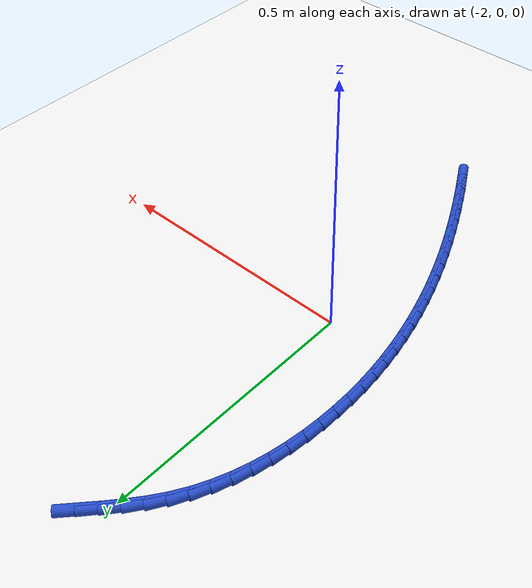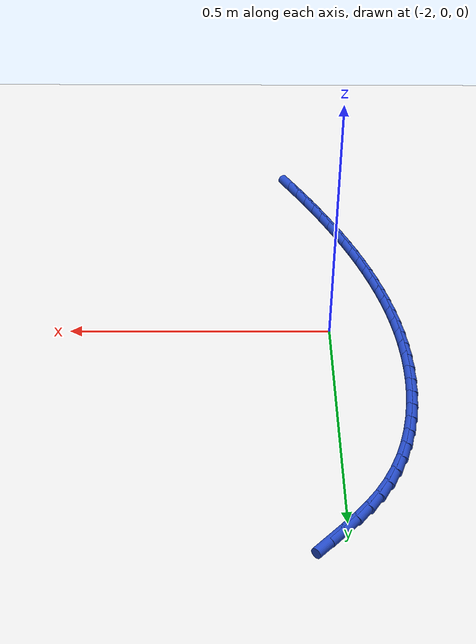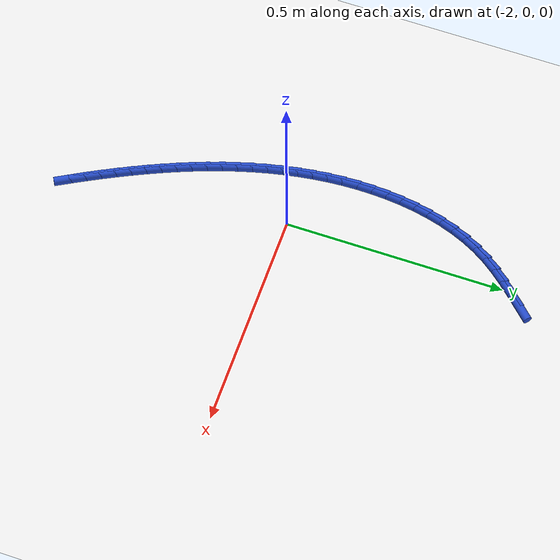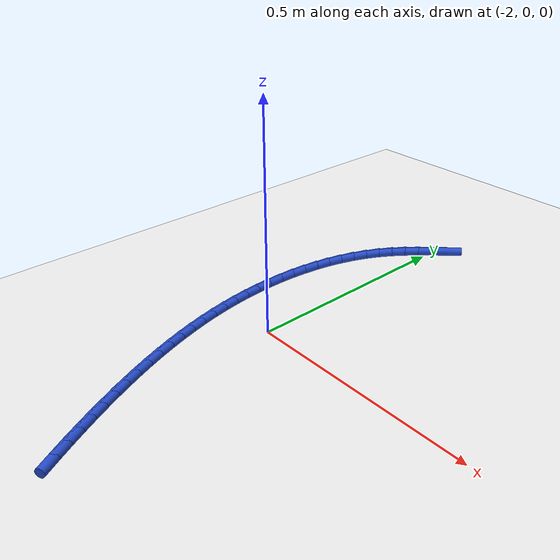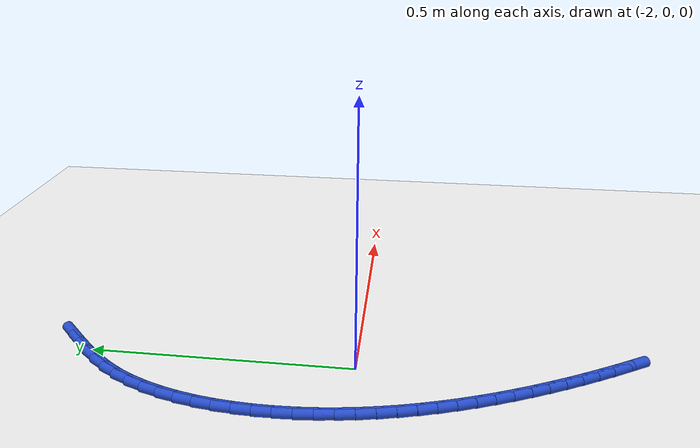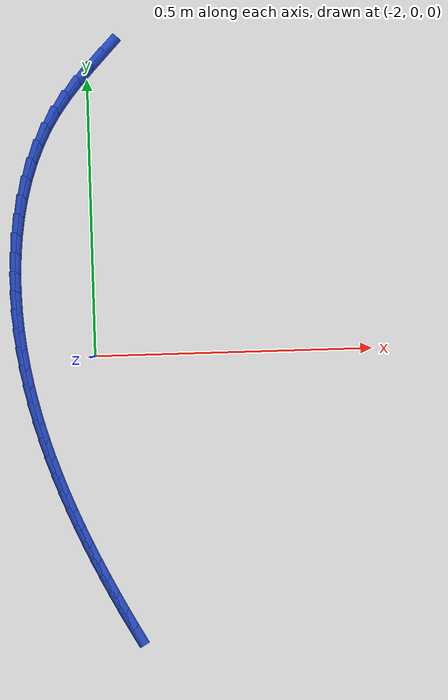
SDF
<sdf version="1.6">
 <world name="default">
  <model name="ground_plane">
   <static>1</static>
   <link name="link">
    <collision name="collision">
     <geometry><plane><normal>0 0 1</normal><size>100 100</size></plane></geometry>
     <surface><friction><ode><mu>100</mu><mu2>50</mu2></ode></friction></surface>
    </collision>
    <visual name="visual">
     <cast_shadows>0</cast_shadows>
     <geometry><plane><normal>0 0 1</normal><size>100 100</size></plane></geometry>
     <material>
      <script><uri>file://media/materials/scripts/gazebo.material</uri><name>Gazebo/WhiteGlow</name></script>
     </material>
    </visual>
   </link>
  </model>
  <model name="line">
   <link name="link_83">
    <pose>-1.9707560407560392 0.5460549394576615 0.01 0 1.57 0.816110648696272</pose>
    <collision name="collision">
     <geometry><cylinder><radius>0.01</radius><length>0.08</length></cylinder></geometry>
    </collision>
    <visual name="visual">
     <material>
      <script><name>Gazebo/Blue</name><uri>file://media/materials/scripts/gazebo.material</uri></script>
     </material>
     <geometry><cylinder><radius>0.01</radius><length>0.08</length></cylinder></geometry>
    </visual>
   </link>
   <link name="link_84">
    <pose>-1.993944335859988 0.5213966960339564 0.01 0 1.57 0.8399314860507694</pose>
    <collision name="collision">
     <geometry><cylinder><radius>0.01</radius><length>0.08</length></cylinder></geometry>
    </collision>
    <visual name="visual">
     <material>
      <script><name>Gazebo/Blue</name><uri>file://media/materials/scripts/gazebo.material</uri></script>
     </material>
     <geometry><cylinder><radius>0.01</radius><length>0.08</length></cylinder></geometry>
    </visual>
   </link>
   <link name="link_85">
    <pose>-2.0164098009331446 0.4963369511467374 0.01 0 1.57 0.8817180032003197</pose>
    <collision name="collision">
     <geometry><cylinder><radius>0.01</radius><length>0.08</length></cylinder></geometry>
    </collision>
    <visual name="visual">
     <material>
      <script><name>Gazebo/Blue</name><uri>file://media/materials/scripts/gazebo.material</uri></script>
     </material>
     <geometry><cylinder><radius>0.01</radius><length>0.08</length></cylinder></geometry>
    </visual>
   </link>
   <link name="link_86">
    <pose>-2.037667930040034 0.4705316046129612 0.01 0 1.57 0.9418480155704846</pose>
    <collision name="collision">
     <geometry><cylinder><radius>0.01</radius><length>0.08</length></cylinder></geometry>
    </collision>
    <visual name="visual">
     <material>
      <script><name>Gazebo/Blue</name><uri>file://media/materials/scripts/gazebo.material</uri></script>
     </material>
     <geometry><cylinder><radius>0.01</radius><length>0.08</length></cylinder></geometry>
    </visual>
   </link>
   <link name="link_87">
    <pose>-2.057234217245182 0.44363655624958503 0.01 0 1.57 1.0194242816541261</pose>
    <collision name="collision">
     <geometry><cylinder><radius>0.01</radius><length>0.08</length></cylinder></geometry>
    </collision>
    <visual name="visual">
     <material>
      <script><name>Gazebo/Blue</name><uri>file://media/materials/scripts/gazebo.material</uri></script>
     </material>
     <geometry><cylinder><radius>0.01</radius><length>0.08</length></cylinder></geometry>
    </visual>
   </link>
   <link name="link_88">
    <pose>-2.0746446985517606 0.41532658188074695 0.01 0 1.57 1.1011517898887444</pose>
    <collision name="collision">
     <geometry><cylinder><radius>0.01</radius><length>0.08</length></cylinder></geometry>
    </collision>
    <visual name="visual">
     <material>
      <script><name>Gazebo/Blue</name><uri>file://media/materials/scripts/gazebo.material</uri></script>
     </material>
     <geometry><cylinder><radius>0.01</radius><length>0.08</length></cylinder></geometry>
    </visual>
   </link>
   <link name="link_89">
    <pose>-2.089749310873926 0.3855649011796057 0.01 0 1.57 1.1769223389489207</pose>
    <collision name="collision">
     <geometry><cylinder><radius>0.01</radius><length>0.08</length></cylinder></geometry>
    </collision>
    <visual name="visual">
     <material>
      <script><name>Gazebo/Blue</name><uri>file://media/materials/scripts/gazebo.material</uri></script>
     </material>
     <geometry><cylinder><radius>0.01</radius><length>0.08</length></cylinder></geometry>
    </visual>
   </link>
   <link name="link_90">
    <pose>-2.1026430179732616 0.3545398892250976 0.01 0 1.57 1.2466285073080081</pose>
    <collision name="collision">
     <geometry><cylinder><radius>0.01</radius><length>0.08</length></cylinder></geometry>
    </collision>
    <visual name="visual">
     <material>
      <script><name>Gazebo/Blue</name><uri>file://media/materials/scripts/gazebo.material</uri></script>
     </material>
     <geometry><cylinder><radius>0.01</radius><length>0.08</length></cylinder></geometry>
    </visual>
   </link>
   <link name="link_91">
    <pose>-2.1134272852361935 0.32244589544547725 0.01 0 1.57 1.3106284091413496</pose>
    <collision name="collision">
     <geometry><cylinder><radius>0.01</radius><length>0.08</length></cylinder></geometry>
    </collision>
    <visual name="visual">
     <material>
      <script><name>Gazebo/Blue</name><uri>file://media/materials/scripts/gazebo.material</uri></script>
     </material>
     <geometry><cylinder><radius>0.01</radius><length>0.08</length></cylinder></geometry>
    </visual>
   </link>
   <link name="link_92">
    <pose>-2.122203578049143 0.2894772692689986 0.01 0 1.57 1.3694033449441405</pose>
    <collision name="collision">
     <geometry><cylinder><radius>0.01</radius><length>0.08</length></cylinder></geometry>
    </collision>
    <visual name="visual">
     <material>
      <script><name>Gazebo/Blue</name><uri>file://media/materials/scripts/gazebo.material</uri></script>
     </material>
     <geometry><cylinder><radius>0.01</radius><length>0.08</length></cylinder></geometry>
    </visual>
   </link>
   <link name="link_93">
    <pose>-2.1290733617985373 0.255828360123916 0.01 0 1.57 1.4234964921947708</pose>
    <collision name="collision">
     <geometry><cylinder><radius>0.01</radius><length>0.08</length></cylinder></geometry>
    </collision>
    <visual name="visual">
     <material>
      <script><name>Gazebo/Blue</name><uri>file://media/materials/scripts/gazebo.material</uri></script>
     </material>
     <geometry><cylinder><radius>0.01</radius><length>0.08</length></cylinder></geometry>
    </visual>
   </link>
   <link name="link_94">
    <pose>-2.1341381018707986 0.2216935174384837 0.01 0 1.57 1.4734715980218058</pose>
    <collision name="collision">
     <geometry><cylinder><radius>0.01</radius><length>0.08</length></cylinder></geometry>
    </collision>
    <visual name="visual">
     <material>
      <script><name>Gazebo/Blue</name><uri>file://media/materials/scripts/gazebo.material</uri></script>
     </material>
     <geometry><cylinder><radius>0.01</radius><length>0.08</length></cylinder></geometry>
    </visual>
   </link>
   <link name="link_95">
    <pose>-2.137499263652352 0.1872670906409561 0.01 0 1.57 1.5198883713848865</pose>
    <collision name="collision">
     <geometry><cylinder><radius>0.01</radius><length>0.08</length></cylinder></geometry>
    </collision>
    <visual name="visual">
     <material>
      <script><name>Gazebo/Blue</name><uri>file://media/materials/scripts/gazebo.material</uri></script>
     </material>
     <geometry><cylinder><radius>0.01</radius><length>0.08</length></cylinder></geometry>
    </visual>
   </link>
   <link name="link_96">
    <pose>-2.1392583125296207 0.1527434291595876 0.01 0 1.57 1.563306123403074</pose>
    <collision name="collision">
     <geometry><cylinder><radius>0.01</radius><length>0.08</length></cylinder></geometry>
    </collision>
    <visual name="visual">
     <material>
      <script><name>Gazebo/Blue</name><uri>file://media/materials/scripts/gazebo.material</uri></script>
     </material>
     <geometry><cylinder><radius>0.01</radius><length>0.08</length></cylinder></geometry>
    </visual>
   </link>
   <link name="link_97">
    <pose>-2.139516197743743 0.11831440528796708 0.01 0 1.57 -1.5369349546709608</pose>
    <collision name="collision">
     <geometry><cylinder><radius>0.01</radius><length>0.08</length></cylinder></geometry>
    </collision>
    <visual name="visual">
     <material>
      <script><name>Gazebo/Blue</name><uri>file://media/materials/scripts/gazebo.material</uri></script>
     </material>
     <geometry><cylinder><radius>0.01</radius><length>0.08</length></cylinder></geometry>
    </visual>
   </link>
   <link name="link_98">
    <pose>-2.1383568817087246 0.08409036648632064 0.01 0 1.57 -1.4970336769448815</pose>
    <collision name="collision">
     <geometry><cylinder><radius>0.01</radius><length>0.08</length></cylinder></geometry>
    </collision>
    <visual name="visual">
     <material>
      <script><name>Gazebo/Blue</name><uri>file://media/materials/scripts/gazebo.material</uri></script>
     </material>
     <geometry><cylinder><radius>0.01</radius><length>0.08</length></cylinder></geometry>
    </visual>
   </link>
   <link name="link_99">
    <pose>-2.1358438923832748 0.050083589189046804 0.01 0 1.57 -1.458657653245983</pose>
    <collision name="collision">
     <geometry><cylinder><radius>0.01</radius><length>0.08</length></cylinder></geometry>
    </collision>
    <visual name="visual">
     <material>
      <script><name>Gazebo/Blue</name><uri>file://media/materials/scripts/gazebo.material</uri></script>
     </material>
     <geometry><cylinder><radius>0.01</radius><length>0.08</length></cylinder></geometry>
    </visual>
   </link>
   <link name="link_100">
    <pose>-2.1320395446662714 0.016300527995783354 0.01 0 1.57 -1.421893040092961</pose>
    <collision name="collision">
     <geometry><cylinder><radius>0.01</radius><length>0.08</length></cylinder></geometry>
    </collision>
    <visual name="visual">
     <material>
      <script><name>Gazebo/Blue</name><uri>file://media/materials/scripts/gazebo.material</uri></script>
     </material>
     <geometry><cylinder><radius>0.01</radius><length>0.08</length></cylinder></geometry>
    </visual>
   </link>
   <link name="link_101">
    <pose>-2.1270061534565907 -0.017252362493831854 0.01 0 1.57 -1.3868022495313823</pose>
    <collision name="collision">
     <geometry><cylinder><radius>0.01</radius><length>0.08</length></cylinder></geometry>
    </collision>
    <visual name="visual">
     <material>
      <script><name>Gazebo/Blue</name><uri>file://media/materials/scripts/gazebo.material</uri></script>
     </material>
     <geometry><cylinder><radius>0.01</radius><length>0.08</length></cylinder></geometry>
    </visual>
   </link>
   <link name="link_102">
    <pose>-2.1208060336531123 -0.050568627680161016 0.01 0 1.57 -1.3534261665728167</pose>
    <collision name="collision">
     <geometry><cylinder><radius>0.01</radius><length>0.08</length></cylinder></geometry>
    </collision>
    <visual name="visual">
     <material>
      <script><name>Gazebo/Blue</name><uri>file://media/materials/scripts/gazebo.material</uri></script>
     </material>
     <geometry><cylinder><radius>0.01</radius><length>0.08</length></cylinder></geometry>
    </visual>
   </link>
   <link name="link_103">
    <pose>-2.1135015001547126 -0.08364181296356629 0.01 0 1.57 -1.3217867959468232</pose>
    <collision name="collision">
     <geometry><cylinder><radius>0.01</radius><length>0.08</length></cylinder></geometry>
    </collision>
    <visual name="visual">
     <material>
      <script><name>Gazebo/Blue</name><uri>file://media/materials/scripts/gazebo.material</uri></script>
     </material>
     <geometry><cylinder><radius>0.01</radius><length>0.08</length></cylinder></geometry>
    </visual>
   </link>
   <link name="link_104">
    <pose>-2.1051548678602696 -0.11646546374440987 0.01 0 1.57 -1.2918901231265885</pose>
    <collision name="collision">
     <geometry><cylinder><radius>0.01</radius><length>0.08</length></cylinder></geometry>
    </collision>
    <visual name="visual">
     <material>
      <script><name>Gazebo/Blue</name><uri>file://media/materials/scripts/gazebo.material</uri></script>
     </material>
     <geometry><cylinder><radius>0.01</radius><length>0.08</length></cylinder></geometry>
    </visual>
   </link>
   <link name="link_105">
    <pose>-2.0958284516686616 -0.14903312542305394 0.01 0 1.57 -1.26372901322778</pose>
    <collision name="collision">
     <geometry><cylinder><radius>0.01</radius><length>0.08</length></cylinder></geometry>
    </collision>
    <visual name="visual">
     <material>
      <script><name>Gazebo/Blue</name><uri>file://media/materials/scripts/gazebo.material</uri></script>
     </material>
     <geometry><cylinder><radius>0.01</radius><length>0.08</length></cylinder></geometry>
    </visual>
   </link>
   <link name="link_106">
    <pose>-2.0855845664787647 -0.1813383433998606 0.01 0 1.57 -1.237286014801132</pose>
    <collision name="collision">
     <geometry><cylinder><radius>0.01</radius><length>0.08</length></cylinder></geometry>
    </collision>
    <visual name="visual">
     <material>
      <script><name>Gazebo/Blue</name><uri>file://media/materials/scripts/gazebo.material</uri></script>
     </material>
     <geometry><cylinder><radius>0.01</radius><length>0.08</length></cylinder></geometry>
    </visual>
   </link>
   <link name="link_107">
    <pose>-2.074485527189458 -0.21337466307519212 0.01 0 1.57 -1.2125359777263292</pose>
    <collision name="collision">
     <geometry><cylinder><radius>0.01</radius><length>0.08</length></cylinder></geometry>
    </collision>
    <visual name="visual">
     <material>
      <script><name>Gazebo/Blue</name><uri>file://media/materials/scripts/gazebo.material</uri></script>
     </material>
     <geometry><cylinder><radius>0.01</radius><length>0.08</length></cylinder></geometry>
    </visual>
   </link>
   <link name="link_108">
    <pose>-2.0625936486996186 -0.24513562984941062 0.01 0 1.57 -1.1894484315720188</pose>
    <collision name="collision">
     <geometry><cylinder><radius>0.01</radius><length>0.08</length></cylinder></geometry>
    </collision>
    <visual name="visual">
     <material>
      <script><name>Gazebo/Blue</name><uri>file://media/materials/scripts/gazebo.material</uri></script>
     </material>
     <geometry><cylinder><radius>0.01</radius><length>0.08</length></cylinder></geometry>
    </visual>
   </link>
   <link name="link_109">
    <pose>-2.0499712459081243 -0.2766147891228783 0.01 0 1.57 -1.167989701060566</pose>
    <collision name="collision">
     <geometry><cylinder><radius>0.01</radius><length>0.08</length></cylinder></geometry>
    </collision>
    <visual name="visual">
     <material>
      <script><name>Gazebo/Blue</name><uri>file://media/materials/scripts/gazebo.material</uri></script>
     </material>
     <geometry><cylinder><radius>0.01</radius><length>0.08</length></cylinder></geometry>
    </visual>
   </link>
   <link name="link_110">
    <pose>-2.0366806337138526 -0.3078056862959574 0.01 0 1.57 -1.148124758293788</pose>
    <collision name="collision">
     <geometry><cylinder><radius>0.01</radius><length>0.08</length></cylinder></geometry>
    </collision>
    <visual name="visual">
     <material>
      <script><name>Gazebo/Blue</name><uri>file://media/materials/scripts/gazebo.material</uri></script>
     </material>
     <geometry><cylinder><radius>0.01</radius><length>0.08</length></cylinder></geometry>
    </visual>
   </link>
   <link name="link_111">
    <pose>-2.022784127015681 -0.33870186676900993 0.01 0 1.57 -1.1298165639423248</pose>
    <collision name="collision">
     <geometry><cylinder><radius>0.01</radius><length>0.08</length></cylinder></geometry>
    </collision>
    <visual name="visual">
     <material>
      <script><name>Gazebo/Blue</name><uri>file://media/materials/scripts/gazebo.material</uri></script>
     </material>
     <geometry><cylinder><radius>0.01</radius><length>0.08</length></cylinder></geometry>
    </visual>
   </link>
   <link name="link_112">
    <pose>-2.0083438669481866 -0.3692970646704247 0.01 0 1.57 -1.1129116493845994</pose>
    <collision name="collision">
     <geometry><cylinder><radius>0.01</radius><length>0.08</length></cylinder></geometry>
    </collision>
    <visual name="visual">
     <material>
      <script><name>Gazebo/Blue</name><uri>file://media/materials/scripts/gazebo.material</uri></script>
     </material>
     <geometry><cylinder><radius>0.01</radius><length>0.08</length></cylinder></geometry>
    </visual>
   </link>
   <link name="link_113">
    <pose>-1.9934122200547097 -0.39959563045949703 0.01 0 1.57 -1.0972251021907893</pose>
    <collision name="collision">
     <geometry><cylinder><radius>0.01</radius><length>0.08</length></cylinder></geometry>
    </collision>
    <visual name="visual">
     <material>
      <script><name>Gazebo/Blue</name><uri>file://media/materials/scripts/gazebo.material</uri></script>
     </material>
     <geometry><cylinder><radius>0.01</radius><length>0.08</length></cylinder></geometry>
    </visual>
   </link>
   <link name="link_114">
    <pose>-1.9780267653276464 -0.42961797557753734 0.01 0 1.57 -1.0827576369014915</pose>
    <collision name="collision">
     <geometry><cylinder><radius>0.01</radius><length>0.08</length></cylinder></geometry>
    </collision>
    <visual name="visual">
     <material>
      <script><name>Gazebo/Blue</name><uri>file://media/materials/scripts/gazebo.material</uri></script>
     </material>
     <geometry><cylinder><radius>0.01</radius><length>0.08</length></cylinder></geometry>
    </visual>
   </link>
   <link name="link_115">
    <pose>-1.9622238512196764 -0.45938584797359916 0.01 0 1.57 -1.0695221017141467</pose>
    <collision name="collision">
     <geometry><cylinder><radius>0.01</radius><length>0.08</length></cylinder></geometry>
    </collision>
    <visual name="visual">
     <material>
      <script><name>Gazebo/Blue</name><uri>file://media/materials/scripts/gazebo.material</uri></script>
     </material>
     <geometry><cylinder><radius>0.01</radius><length>0.08</length></cylinder></geometry>
    </visual>
   </link>
   <link name="link_116">
    <pose>-1.9460398261834773 -0.48892099559673513 0.01 0 1.57 -1.0575280469551325</pose>
    <collision name="collision">
     <geometry><cylinder><radius>0.01</radius><length>0.08</length></cylinder></geometry>
    </collision>
    <visual name="visual">
     <material>
      <script><name>Gazebo/Blue</name><uri>file://media/materials/scripts/gazebo.material</uri></script>
     </material>
     <geometry><cylinder><radius>0.01</radius><length>0.08</length></cylinder></geometry>
    </visual>
   </link>
  </model>
 </world>
</sdf>
